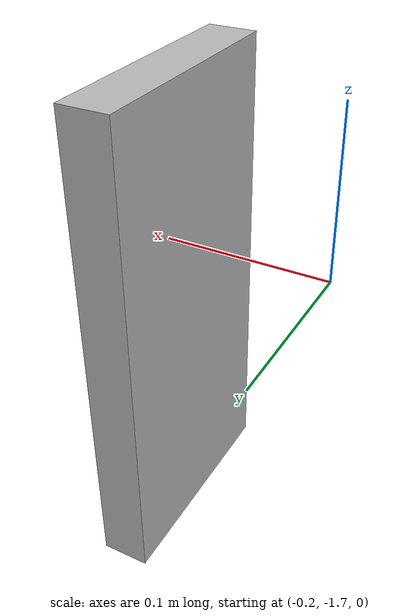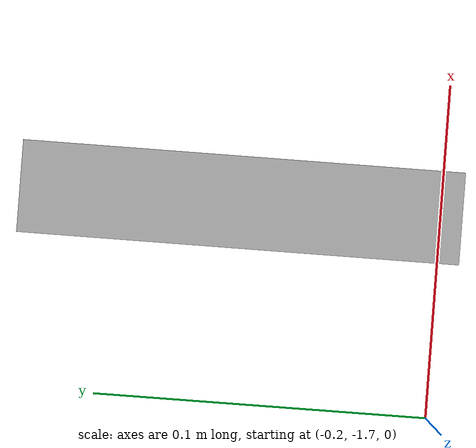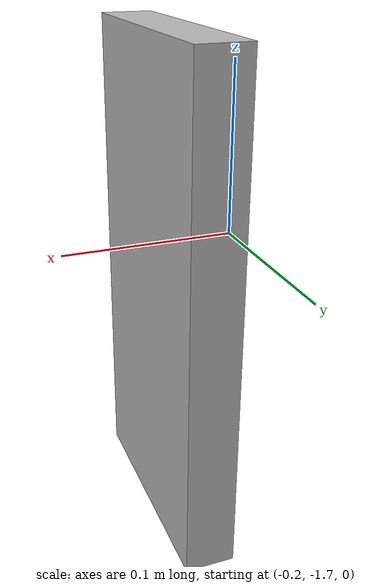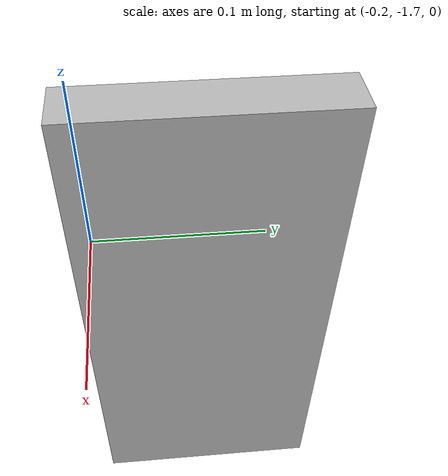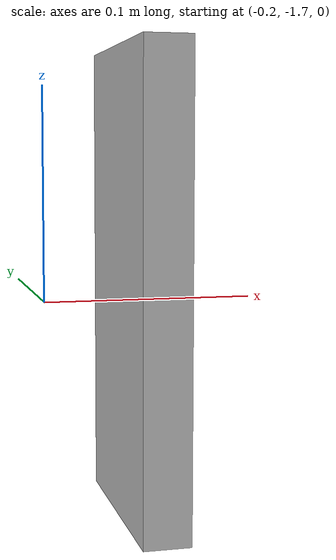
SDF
<?xml version="1.0" ?>
<sdf version="1.6">
  <model name="traffic_parking">
    <static>true</static>
    <link name="box">
      <pose>-0.14 -1.64 0 0 0 1.57</pose>
      <collision name="collision">
        <geometry>
          <box>
            <size>0.12 0.025 0.25</size>
          </box>
        </geometry>
      </collision>
      <visual name="visual">
        <geometry>
          <box>
            <size>0.12 0.025 0.25</size>
          </box>
        </geometry>
        <material>
          <script>
            <uri>model://turtlebot3_autorace_2020/traffic_parking/materials/scripts</uri>
            <uri>model://turtlebot3_autorace_2020/traffic_parking/materials/textures</uri>
            <name>traffic_parking</name>
          </script>
        </material>
      </visual>
    </link>
  </model>
</sdf>
